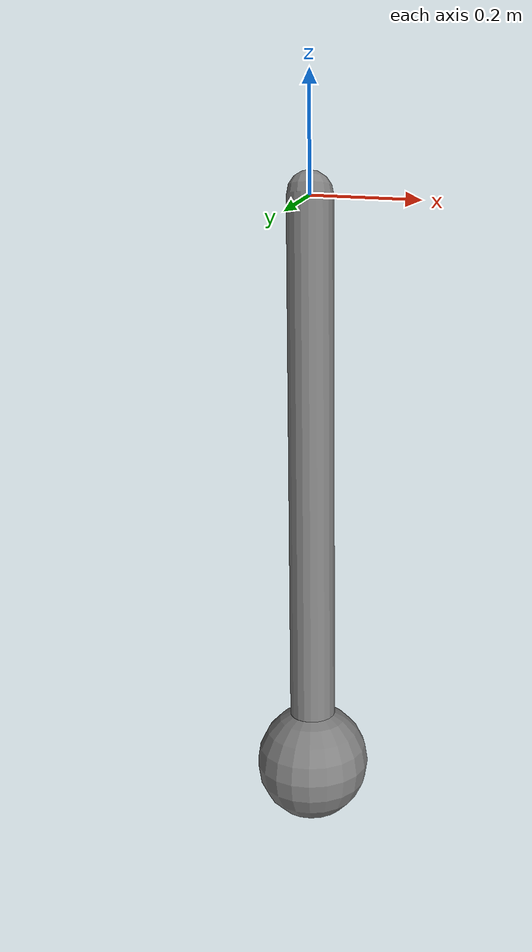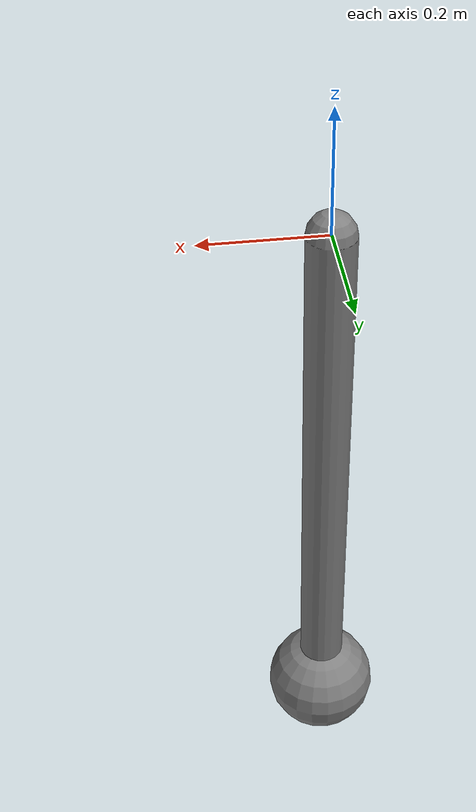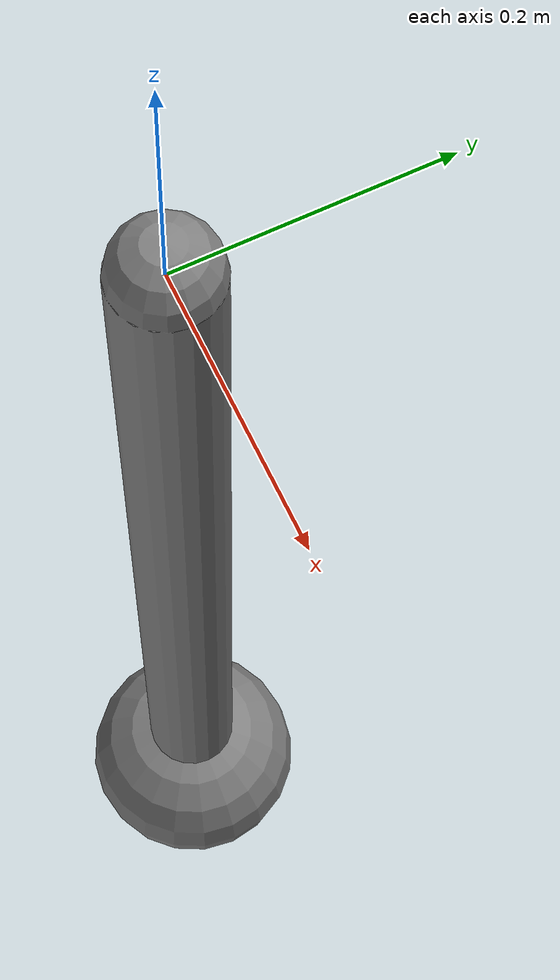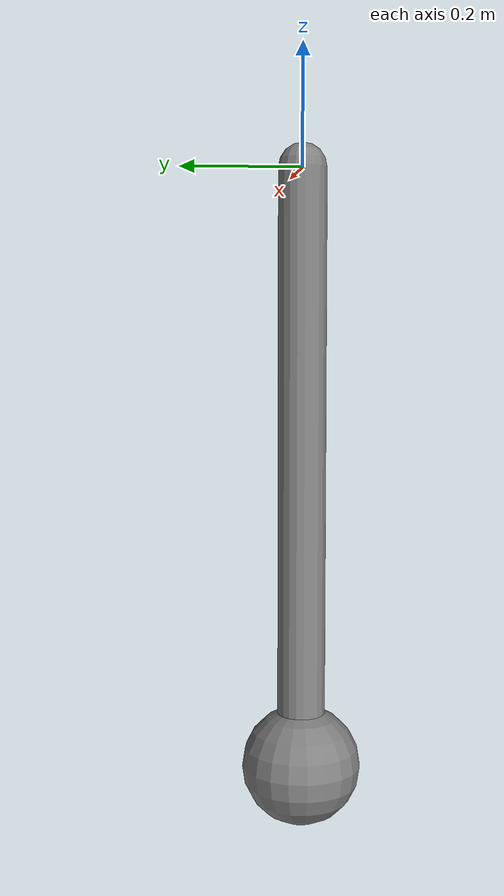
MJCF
<mujoco model="pendulum">

  <option timestep="0.02" integrator="RK4" gravity="0 0 -9.81"/>

  <worldbody>
    <body name="pole" pos="0 0 0">
      <joint name="hinge" type="hinge" axis="0 1 0" limited="false"/>
      <!-- Pole: thin capsule from pivot to bob -->
      <geom type="capsule" fromto="0 0 0 0 0 -1" size="0.04" mass="0.1"/>
      <!-- Bob: 1 kg sphere at the end of the pole -->
      <body name="bob" pos="0 0 -1">
        <geom type="sphere" size="0.1" mass="1.0"/>
        <site name="tip" size="0.01"/>
      </body>
    </body>
  </worldbody>

  <!-- Single motor applying torque at the hinge; clamped to [-5, 5] Nm -->
  <actuator>
    <motor name="motor" joint="hinge" gear="1" ctrlrange="-5 5"/>
  </actuator>

  <sensor>
    <jointpos name="theta"     joint="hinge"/>
    <jointvel name="theta_dot" joint="hinge"/>
  </sensor>

</mujoco>
